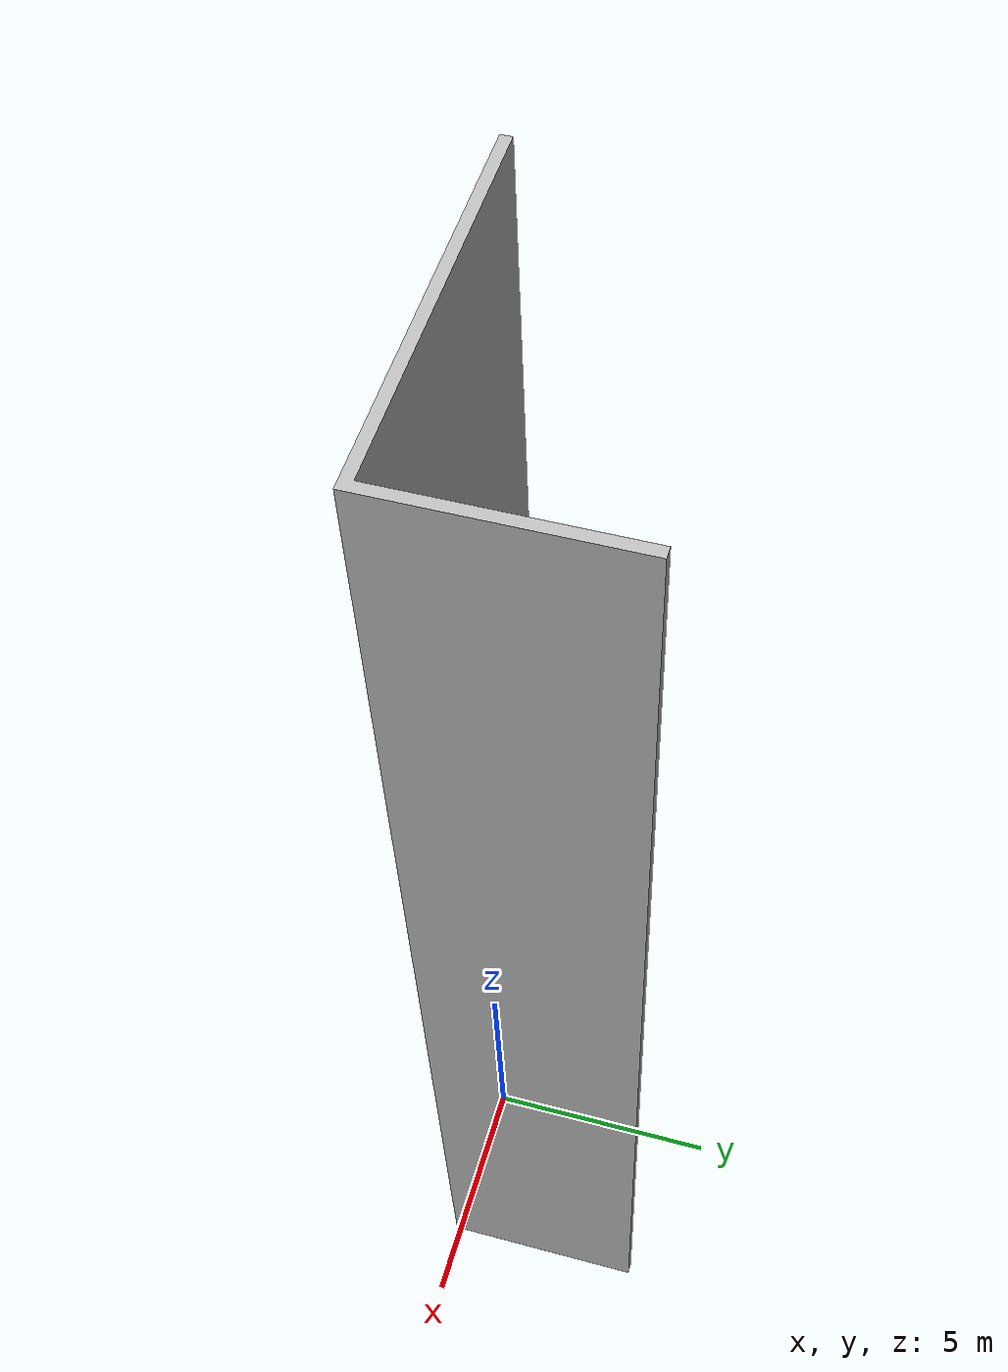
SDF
<?xml version='1.0'?>
<sdf version="1.4">
  <model name="my_model">
    <pose>0 0 0 0 0 0</pose>
    <static>false</static>
    <link name="link">

      <collision name="pencil_collision">
        <geometry>
          <mesh>
          <uri>model://wall_corner/mashes/wall_corner.dae</uri>
	   <scale>1 1 1</scale>
          </mesh>
        </geometry>
      </collision>
      <visual name="visual">
        <geometry>
          <mesh>
          <uri>model://wall_corner/mashes/wall_corner.dae</uri>
	   <scale>1 1 1</scale>
          </mesh>
        </geometry>
      </visual>
    </link>
  </model>
</sdf>
